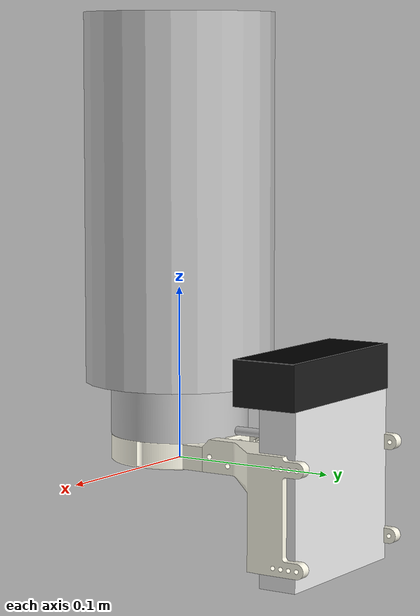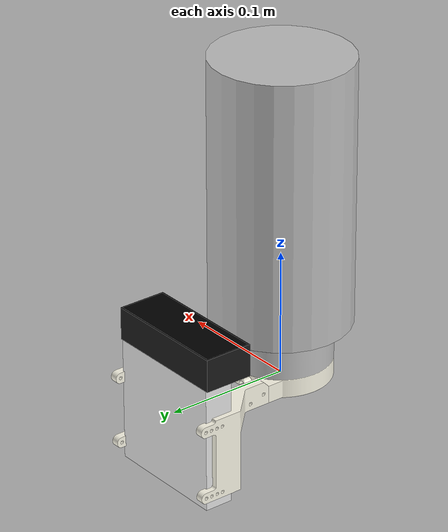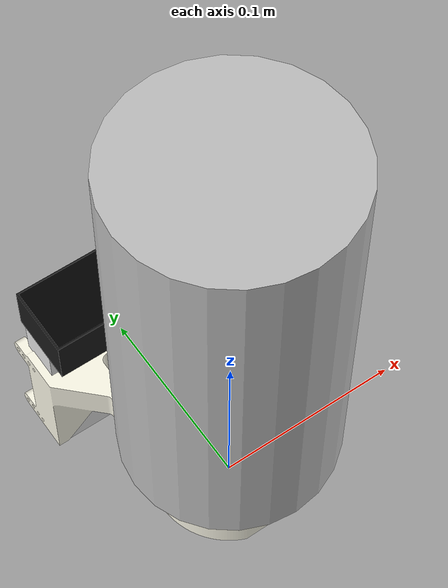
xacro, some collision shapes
<?xml version="1.0"?>
<robot xmlns:xacro="http://ros.org/wiki/xacro" name="twintool">

    <!-- load the azure kinect and six fingered gripper model -->
    <xacro:include filename="$(find motoman_description)/urdf/azure/azure.urdf.xacro"/>
    <xacro:include filename="$(find motoman_description)/urdf/grippers/six_fingered_gripper/six_fingered_gripper.urdf.xacro" />

    <!-- custom colors -->
    <material name="3Dprinted_cream">
        <color rgba="${254/255} ${251/255} ${234/255} 1"/>
    </material>
    <material name="leptrinoSilver">
        <color rgba="0.75 0.75 0.75 1"/>
    </material>

    <link name="manifold">
		<visual>
			<origin rpy="0 ${-pi} 0" xyz="0 0 0" />
			<geometry>
				<mesh filename="package://motoman_description/meshes/tools/six_fingered_gripper_tool_set/manifold_20211112.stl" scale="0.001 0.001 0.001"/>
			</geometry>
            <material name="3Dprinted_cream"/>
		</visual>
		<collision>
			<origin rpy="0 ${-pi} 0" xyz="0 0 0" />
			<geometry>
				<mesh filename="package://motoman_description/meshes/tools/six_fingered_gripper_tool_set/manifold_20211112.stl" scale="0.001 0.001 0.001"/>
			</geometry>
		</collision>
	</link>

    <xacro:macro name="leptrino_ft" params="parent prefix">
        <joint name="${prefix}ft300_fix" type="fixed">
            <origin xyz="0 0 ${(17/1000)}" rpy="${-pi} ${pi} ${(pi/2) + (pi/2)}"/>
            <parent link="${parent}" />
            <child link="${prefix}leptrino" />
        </joint>

        <!-- Link representing the leptrino force-torque sensor -->
        <!-- TODO: inertial properties -->
        <link name="${prefix}leptrino">
            <inertial>
                <origin xyz="0 0 ${-17 / 1000}" rpy="0 0 0"/>
                <mass value="0.300"/>
                <inertia ixx="${262 / 1000000}" ixy="0" ixz="${1 / 1000000}" iyy="${265 / 1000000}" iyx="0" iyz="${1 / 1000000}" izz="${219 / 1000000}" izx="${-1 / 1000000}" izy="${1 / 1000000}"/>
            </inertial>

            <visual>
                <origin xyz="0 0 0" rpy="${-pi/2} ${pi} ${-pi}" />
                <geometry>
                    <mesh filename="package://motoman_description/meshes/tools/six_fingered_gripper_tool_set/leptrino_sfs080f500m5r0u6.stl" scale="0.001 0.001 0.001"/>
                </geometry>
                <material name="leptrinoSilver"/>
            </visual>

            <collision>
                <origin xyz="0 0 0" rpy="${-pi/2} ${pi} ${-pi}" />
                <geometry>
                    <mesh filename="package://motoman_description/meshes/tools/six_fingered_gripper_tool_set/leptrino_sfs080f500m5r0u6.stl" scale="0.001 0.001 0.001"/>
                </geometry>
            </collision>
        </link>

        <joint name="${prefix}measurment_joint" type="fixed">
            <!-- set rpy correspond to real hardware -->
            <origin xyz="0 0 0" rpy="${0} ${pi+pi} ${-pi/2}" />
            <parent link="${prefix}leptrino" />
            <child link="${prefix}leptrino_measurement_joint" />
        </joint>

        <link name="${prefix}leptrino_measurement_joint"/>
    </xacro:macro>

    <!-- create the leptrino using the manifold as a parent link -->
    <xacro:leptrino_ft parent="manifold" prefix=""/>

    <!-- azure holder -->
    <link name="azure_holder">
		<visual>
			<origin rpy="${-pi/2} ${-pi/2} 0" xyz="0 0 0" />
			<geometry>
				<mesh filename="package://motoman_description/meshes/azure/azure_holder_20211112.stl" scale="0.001 0.001 0.001"/>
			</geometry>
            <material name="3Dprinted_cream"/>
		</visual>
		<collision>
			<origin rpy="${-pi/2} ${-pi/2} 0" xyz="0 0 0" />
			<geometry>
				<mesh filename="package://motoman_description/meshes/azure/azure_holder_20211112.stl" scale="0.001 0.001 0.001"/>
			</geometry>
		</collision>
	</link>
    <joint name="manifold_to_azure_holder" type="fixed">
        <parent link="manifold" />
        <child link="azure_holder" />
        <origin xyz="${0/1000} ${(81.559+5.0)/1000} ${7.558/1000}" rpy="0 0 0" />
    </joint>

    <!-- azure holder to camera base link -->
    <joint name="azure_holder_to_camera_base" type="fixed">
        <parent link="azure_holder" />
        <child link="camera_base" />
        <origin xyz="${0/1000} ${3.5/1000} ${61.80/1000}" rpy="0 ${-pi/2} ${-pi/2}" />
    </joint>

    <joint name="adaptor_2_to_base_gripper" type="fixed">
        <parent link="leptrino" />
        <child link="base_gripper" />
        <origin xyz="0 0 ${28.8/1000}" rpy="${-pi/2} 0 -0.261799388" />
    </joint>

</robot>

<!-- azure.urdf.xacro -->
<!--
 Copyright (c) Microsoft Corporation. All rights reserved.
 Licensed under the MIT License.
 -->

<robot name="azure-kinect" xmlns:xacro="http://www.ros.org/wiki/xacro">
  <xacro:arg name="tf_prefix" default=""/>

  <!-- material tag cause the error while bring up -->

  <material name="dark_black">
    <color rgba="0. 0. 0. 1" />
  </material>
  <material name="dark_grey">
    <color rgba="0.1 0.1 0.1 1" />
  </material>
  <material name="dark_white">
    <color rgba="0.9 0.9 0.9 1" />
  </material>

  <link name="$(arg tf_prefix)camera_body">
    <visual>
      <origin xyz="0. 0. 0." rpy="0 0 0" />
      <geometry>
        <box size="0.0994 0.0996 0.023" />
      </geometry>
      <material name="dark_white" />
    </visual>
    <collision>
      <origin xyz="0. 0. 0." rpy="0 0 0" />
			<geometry>
				<box size="0.0994 0.0996 0.023" />
			</geometry>
    </collision>
  </link>

  <link name="$(arg tf_prefix)camera_base">
    <visual>
      <origin xyz="-0.013 0. 0." rpy="0 0 0" />
      <geometry>
        <box size="0.026 0.103 0.039" />
      </geometry>
      <material name="dark_grey" />
    </visual>
    <collision>
      <origin xyz="-0.013 0. 0." rpy="0 0 0" />
			<geometry>
				<box size="0.026 0.103 0.039" />
			</geometry>
    </collision>
  </link>

  <link name="$(arg tf_prefix)camera_visor">
    <visual>
      <origin xyz="-0.0128 0. 0." rpy="0 0 0" />
      <geometry>
        <box size="0.026 0.101 0.037" />
      </geometry>
      <material name="dark_black" />
    </visual>
    <collision>
      <origin xyz="-0.0128 0. 0." rpy="0 0 0" />
			<geometry>
				<box size="0.026 0.101 0.037" />
			</geometry>
    </collision>
  </link>

  <joint name="$(arg tf_prefix)camera_base_to_body" type="fixed">
    <parent link="$(arg tf_prefix)camera_base" />
    <child link="$(arg tf_prefix)camera_body" />
    <origin xyz="-0.0757 0. 0.008" rpy="0. 0. 0." />
  </joint>

  <joint name="$(arg tf_prefix)camera_base_to_visor" type="fixed">
    <parent link="$(arg tf_prefix)camera_base" />
    <child link="$(arg tf_prefix)camera_visor" />
    <origin xyz="0. 0. 0." rpy="0. 0. 0." />
  </joint>
</robot>

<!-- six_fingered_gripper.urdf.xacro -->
<robot xmlns:xacro="http://ros.org/wiki/xacro" name="gripper">

  <xacro:property name="pi" value="3.141592654" />
  <xacro:property name="upper_joint_limit" value="${pi/4}" />
  <xacro:property name="lower_joint_limit" value="${-pi/4}" />

  <link
    name="base_gripper">
    <inertial>
      <origin
        xyz="1.10509452800074E-06 0.00208243198225818 0.0400984076446437"
        rpy="0 0 0" />
      <mass
        value="0.185199260372416" />
      <inertia
        ixx="9.76222430788153E-05"
        ixy="-7.8112390093605E-09"
        ixz="6.20208431775755E-12"
        iyy="8.20988447730316E-05"
        iyz="-3.40692325998543E-06"
        izz="0.000149625833719171" />
    </inertial>
    <visual>
      <origin
        xyz="0 0 0"
        rpy="0 0 0" />
      <geometry>
        <mesh
          filename="package://motoman_description/meshes/grippers/six_fingered_gripper/base_gripper.STL" />
      </geometry>
      <material
        name="">
        <color
          rgba="0.752941176470588 0.752941176470588 0.752941176470588 1" />
      </material>
    </visual>
    <collision>
			<origin rpy="${pi/2} 0 0" xyz="${0} ${-0.10625} ${0}" />
			<geometry>
        <cylinder radius="0.055" length="0.2125"/>
			</geometry>
		</collision>
  </link>
  <link
    name="gripper_finger_1">
    <inertial>
      <origin
        xyz="-0.0012619 0.038986 -2.3657E-12"
        rpy="0 0 0" />
      <mass
        value="0.006157" />
      <inertia
        ixx="2.4192E-06"
        ixy="2.4793E-07"
        ixz="2.8628E-15"
        iyy="1.6776E-07"
        iyz="1.1444E-15"
        izz="2.5199E-06" />
    </inertial>
    <visual>
      <origin
        xyz="0 0 0"
        rpy="0 0 0" />
      <geometry>
        <mesh
          filename="package://motoman_description/meshes/grippers/six_fingered_gripper/gripper_finger_1.STL" />
      </geometry>
      <material
        name="">
        <color
          rgba="0.75294 0.75294 0.75294 1" />
      </material>
    </visual>
  </link>
  <joint
    name="finger_joint_1"
    type="fixed">
    <origin
      xyz="0.0175 -0.08 0.030311"
      rpy="0 1.0472 -3.1416" />
    <parent
      link="base_gripper" />
    <child
      link="gripper_finger_1" />
    <axis
      xyz="0 0 1" />
  </joint>
  <link
    name="gripper_finger_2">
    <inertial>
      <origin
        xyz="-0.0012619 0.038986 -2.3657E-12"
        rpy="0 0 0" />
      <mass
        value="0.006157" />
      <inertia
        ixx="2.4192E-06"
        ixy="2.4793E-07"
        ixz="2.8628E-15"
        iyy="1.6776E-07"
        iyz="1.1444E-15"
        izz="2.5199E-06" />
    </inertial>
    <visual>
      <origin
        xyz="0 0 0"
        rpy="0 0 0" />
      <geometry>
        <mesh
          filename="package://motoman_description/meshes/grippers/six_fingered_gripper/gripper_finger_2.STL" />
      </geometry>
      <material
        name="">
        <color
          rgba="0.75294 0.75294 0.75294 1" />
      </material>
    </visual>
  </link>
  <joint
    name="finger_joint_2"
    type="fixed">
    <origin
      xyz="0.035 -0.08 0"
      rpy="0 0 3.1416" />
    <parent
      link="base_gripper" />
    <child
      link="gripper_finger_2" />
    <axis
      xyz="0 0 1" />
  </joint>
  <link
    name="gripper_finger_3">
    <inertial>
      <origin
        xyz="-0.0012619 0.038986 -2.3657E-12"
        rpy="0 0 0" />
      <mass
        value="0.006157" />
      <inertia
        ixx="2.4192E-06"
        ixy="2.4793E-07"
        ixz="2.8628E-15"
        iyy="1.6776E-07"
        iyz="1.1444E-15"
        izz="2.5199E-06" />
    </inertial>
    <visual>
      <origin
        xyz="0 0 0"
        rpy="0 0 0" />
      <geometry>
        <mesh
          filename="package://motoman_description/meshes/grippers/six_fingered_gripper/gripper_finger_3.STL" />
      </geometry>
      <material
        name="">
        <color
          rgba="0.75294 0.75294 0.75294 1" />
      </material>
    </visual>
  </link>
  <joint
    name="finger_joint_3"
    type="fixed">
    <origin
      xyz="0.0175 -0.08 -0.030311"
      rpy="0 -1.0472 3.1416" />
    <parent
      link="base_gripper" />
    <child
      link="gripper_finger_3" />
    <axis
      xyz="0 0 1" />
  </joint>
  <link
    name="gripper_finger_4">
    <inertial>
      <origin
        xyz="-0.00126191047827026 0.0389862430346049 -2.36565281253043E-12"
        rpy="0 0 0" />
      <mass
        value="0.00615698496047359" />
      <inertia
        ixx="2.41915556010585E-06"
        ixy="2.47931048420401E-07"
        ixz="2.86284769490924E-15"
        iyy="1.67755649991034E-07"
        iyz="1.14444598796065E-15"
        izz="2.51994852952969E-06" />
    </inertial>
    <visual>
      <origin
        xyz="0 0 0"
        rpy="0 0 0" />
      <geometry>
        <mesh
          filename="package://motoman_description/meshes/grippers/six_fingered_gripper/gripper_finger_4.STL" />
      </geometry>
      <material
        name="">
        <color
          rgba="0.752941176470588 0.752941176470588 0.752941176470588 1" />
      </material>
    </visual>
  </link>
  <joint
    name="finger_joint_4"
    type="fixed">
    <origin
      xyz="-0.0175 -0.08 -0.030311"
      rpy="3.1416 -1.0472 0" />
    <parent
      link="base_gripper" />
    <child
      link="gripper_finger_4" />
    <axis
      xyz="0 0 1" />
  </joint>
  <link
    name="gripper_finger_5">
    <inertial>
      <origin
        xyz="-0.0012619 0.038986 -2.3657E-12"
        rpy="0 0 0" />
      <mass
        value="0.006157" />
      <inertia
        ixx="2.4192E-06"
        ixy="2.4793E-07"
        ixz="2.8628E-15"
        iyy="1.6776E-07"
        iyz="1.1444E-15"
        izz="2.5199E-06" />
    </inertial>
    <visual>
      <origin
        xyz="0 0 0"
        rpy="0 0 0" />
      <geometry>
        <mesh
          filename="package://motoman_description/meshes/grippers/six_fingered_gripper/gripper_finger_5.STL" />
      </geometry>
      <material
        name="">
        <color
          rgba="0.75294 0.75294 0.75294 1" />
      </material>
    </visual>
  </link>
  <joint
    name="finger_joint_5"
    type="fixed">
    <origin
      xyz="-0.035 -0.08 0"
      rpy="3.1416 0 0" />
    <parent
      link="base_gripper" />
    <child
      link="gripper_finger_5" />
    <axis
      xyz="0 0 1" />
  </joint>
  <link
    name="gripper_finger_6">
    <inertial>
      <origin
        xyz="-0.0012619 0.038986 -2.3657E-12"
        rpy="0 0 0" />
      <mass
        value="0.006157" />
      <inertia
        ixx="2.4192E-06"
        ixy="2.4793E-07"
        ixz="2.8628E-15"
        iyy="1.6776E-07"
        iyz="1.1444E-15"
        izz="2.5199E-06" />
    </inertial>
    <visual>
      <origin
        xyz="0 0 0"
        rpy="0 0 0" />
      <geometry>
        <mesh
          filename="package://motoman_description/meshes/grippers/six_fingered_gripper/gripper_finger_6.STL" />
      </geometry>
      <material
        name="">
        <color
          rgba="0.75294 0.75294 0.75294 1" />
      </material>
    </visual>
  </link>
  <joint
    name="finger_joint_6"
    type="fixed">
    <origin
      xyz="-0.0175 -0.08 0.030311"
      rpy="3.1416 1.0472 0" />
    <parent
      link="base_gripper" />
    <child
      link="gripper_finger_6" />
    <axis
      xyz="0 0 1" />
  </joint>
</robot>
